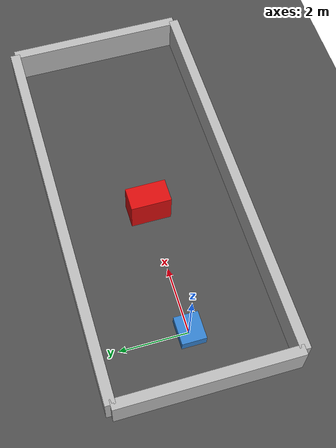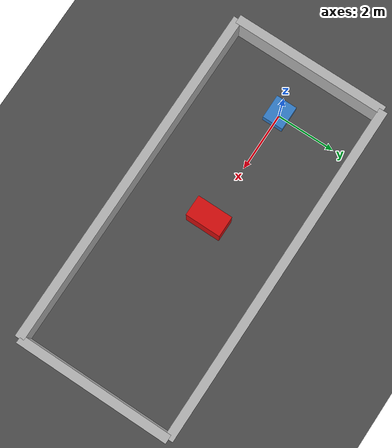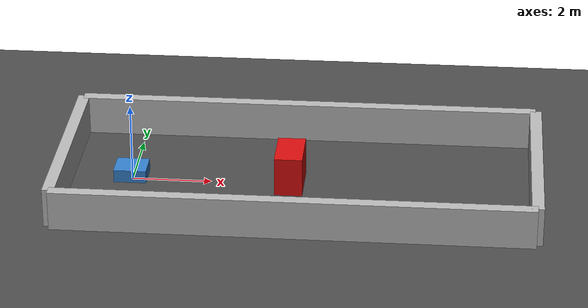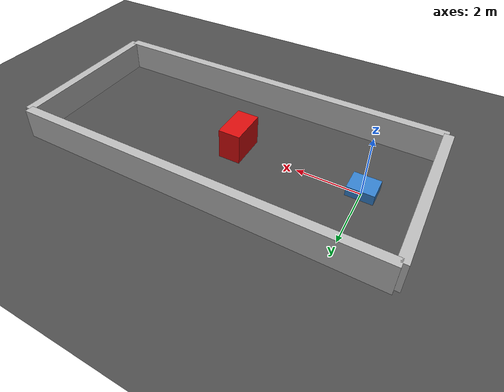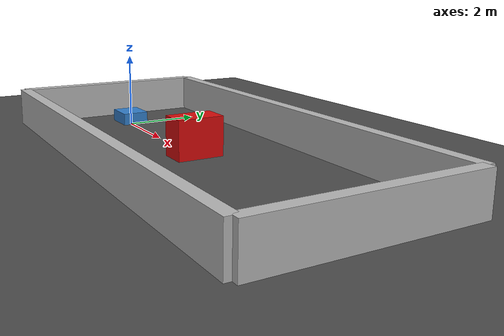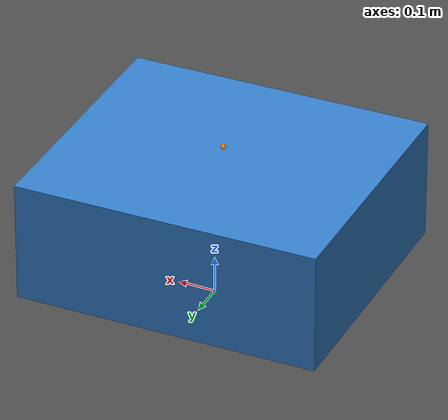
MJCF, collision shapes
<?xml version="1.0" encoding="utf-8"?>

<mujoco model="agv_nav2_test_unexpected_obstacle">

  <!--
    meshdir được tính tương đối từ models/agv_spawn.xml.
    Thư mục meshes nằm ngang hàng với models.
  -->
  <compiler
    angle="degree"
    meshdir="../meshes"
    autolimits="true"/>

  <option
    timestep="0.002"
    gravity="0 0 -9.81"
    integrator="implicitfast"/>

  <visual>
    <headlight
      ambient="0.4 0.4 0.4"
      diffuse="0.8 0.8 0.8"
      specular="0.1 0.1 0.1"/>
  </visual>

  <statistic
    center="0 0 0.2"
    extent="1.5"/>

  <default>

    <joint
      damping="0.1"
      armature="0.001"/>

    <!-- Visual mesh không tham gia collision -->
    <default class="visual">
      <geom
        type="mesh"
        contype="0"
        conaffinity="0"
        density="0"
        group="2"/>
    </default>

    <!-- Collision geometry dùng primitive đơn giản -->
    <default class="collision">
      <geom
        group="3"
        friction="1.0 0.005 0.0001"
        solref="0.005 1"
        solimp="0.9 0.95 0.001"/>
    </default>

  </default>

  <asset>

    <texture
      name="ground_texture"
      type="2d"
      builtin="checker"
      rgb1="0.25 0.25 0.25"
      rgb2="0.35 0.35 0.35"
      width="512"
      height="512"/>

    <material
      name="ground_material"
      texture="ground_texture"
      texrepeat="5 5"
      reflectance="0.05"/>

    <mesh
      name="base_link_mesh"
      file="Base_Link.stl"/>

    <mesh
      name="left_wheel_mesh"
      file="Left_Wheel.stl"/>

    <mesh
      name="right_wheel_mesh"
      file="Right_Wheel.stl"/>

    <mesh
      name="lidar_mesh"
      file="Lidar.stl"/>

    <mesh
      name="mam_xoay_mesh"
      file="Mam_xoay.stl"/>

  </asset>

  <worldbody>

    <light
      name="main_light"
      pos="0 0 4"
      dir="0 0 -1"
      directional="true"/>

    <geom
      name="floor"
      type="plane"
      group="0"
      size="80 30 0.1"
      material="ground_material"
      friction="1.0 0.005 0.0001"/>

    <!-- Compact Nav2 test arena: Unexpected obstacle. -->
    <include file="nav2_test_unexpected_obstacle_environment.xml"/>

    <!--
      Base_Link là thân vật lý chính.

      Giá trị z=0.15 chỉ là vị trí thả robot ban đầu.
      Robot sẽ rơi xuống sàn theo trọng lực.
    -->
    <body
      name="Base_Link"
      pos="0 0 0.15">

      <!-- Cho phép robot chuyển động tự do trong không gian -->
      <freejoint name="base_freejoint"/>

      <!--
        Khối lượng này tạm lấy từ URDF.
        Chưa dùng để kết luận Sim2Real.
      -->
      <inertial
        pos="-0.000061 -0.014856 0.039725"
        mass="10.228"
        diaginertia="0.51173 0.61846 1.0521"/>

      <!-- Mesh chỉ dùng hiển thị -->
      <geom
        name="base_visual"
        class="visual"
        mesh="base_link_mesh"
        rgba="0.75 0.75 0.75 1"/>

      <!--
        Collision dùng box thay vì STL nhiều tam giác.

        center của mesh:
        x = -0.0175
        y = -0.014007
        z = 0.090031

        size trong MuJoCo là half-size.
      -->
      <geom
        name="base_collision"
        class="collision"
        type="box"
        pos="-0.0175 -0.014007 0.090031"
        size="0.410 0.357 0.16297"
        mass="0"
        rgba="0.2 0.5 0.8 0.15"/>

      <site
        name="Base_footprint"
        type="sphere"
        pos="-0.0175 -0.014007 -0.0925"
        size="0.008"
        rgba="0 1 0 1"/>

            <!--
        IMU cố định với Base_Link, nằm tại tâm khu vực mâm xoay.

        imu_site là con trực tiếp của Base_Link, không nằm bên trong
        body Mam_xoay. Vì vậy IMU không quay theo mâm.
      -->
      <site
        name="imu_site"
        type="sphere"
        pos="-0.017238 -0.013326 0.27615"
        size="0.007"
        rgba="1 0.5 0 1"/>

      <body
        name="caster_front_left"
        pos="0.3175 0.152993 -0.0675">

        <joint
          name="caster_front_left_ball_joint"
          type="ball"
          damping="0.001"/>

        <geom
          name="caster_front_left_collision"
          class="collision"
          type="sphere"
          size="0.025"
          mass="0.03"
          friction="0.35 0.002 0.0001"
          rgba="0.1 0.8 0.2 0.25"/>

      </body>

      <body
        name="caster_front_right"
        pos="0.3175 -0.181007 -0.0675">

        <joint
          name="caster_front_right_ball_joint"
          type="ball"
          damping="0.001"/>

        <geom
          name="caster_front_right_collision"
          class="collision"
          type="sphere"
          size="0.025"
          mass="0.03"
          friction="0.35 0.002 0.0001"
          rgba="0.1 0.8 0.2 0.25"/>

      </body>

      <body
        name="caster_rear_left"
        pos="-0.3525 0.152993 -0.0675">

        <joint
          name="caster_rear_left_ball_joint"
          type="ball"
          damping="0.001"/>

        <geom
          name="caster_rear_left_collision"
          class="collision"
          type="sphere"
          size="0.025"
          mass="0.03"
          friction="0.35 0.002 0.0001"
          rgba="0.1 0.8 0.2 0.25"/>

      </body>

      <body
        name="caster_rear_right"
        pos="-0.3525 -0.181007 -0.0675">

        <joint
          name="caster_rear_right_ball_joint"
          type="ball"
          damping="0.001"/>

        <geom
          name="caster_rear_right_collision"
          class="collision"
          type="sphere"
          size="0.025"
          mass="0.03"
          friction="0.35 0.002 0.0001"
          rgba="0.1 0.8 0.2 0.25"/>

      </body>

      <!-- Bánh trái -->
      <body
        name="Left_Wheel"
        pos="-0.0055001 0.27899 0.0075">

        <joint
          name="Left_Wheel_jt"
          type="hinge"
          axis="0 1 0"
          limited="false"
          damping="0.2"/>

        <inertial
          pos="0 0.019997 0"
          mass="0.8908"
          diaginertia="0.0029235 0.0056311 0.0029235"/>

        <geom
          name="left_wheel_visual"
          class="visual"
          mesh="left_wheel_mesh"
          rgba="0.15 0.15 0.15 1"/>

        <!--
          Cylinder mặc định có trục theo Z.
          Quay 90 độ quanh X để trục cylinder nằm theo Y.
        -->
        <geom
          name="left_wheel_collision"
          class="collision"
          type="cylinder"
          size="0.1 0.02"
          euler="90 0 0"
          mass="0"
          friction="1.2 0.01 0.0001"
          rgba="1 0 0 0.2"/>

      </body>

      <!-- Bánh phải -->
      <body
        name="Right_Wheel"
        pos="-0.0055011 -0.30701 0.0075">

        <joint
          name="Right_Wheel_jt"
          type="hinge"
          axis="0 1 0"
          limited="false"
          damping="0.2"/>

        <inertial
          pos="0 -0.019997 0"
          mass="0.8908"
          diaginertia="0.0029235 0.0056311 0.0029235"/>

        <geom
          name="right_wheel_visual"
          class="visual"
          mesh="right_wheel_mesh"
          rgba="0.15 0.15 0.15 1"/>

        <geom
          name="right_wheel_collision"
          class="collision"
          type="cylinder"
          size="0.1 0.02"
          euler="90 0 0"
          mass="0"
          friction="1.2 0.01 0.0001"
          rgba="1 0 0 0.2"/>

      </body>

      <!-- LiDAR 2D: bridge ray-cast từ site lidar_origin. -->
      <body
        name="Lidar"
        pos="0.3305 -0.015607 0.094">

        <geom
          name="lidar_visual"
          class="visual"
          mesh="lidar_mesh"
          rgba="0.3 0.3 0.3 1"/>

        <!-- +X là góc 0 rad, +Y là chiều tăng góc theo REP-103. -->
        <site
          name="lidar_origin"
          type="sphere"
          pos="0 0 0.02"
          size="0.006"
          rgba="1 0 0 1"/>

      </body>

      <!-- Mâm xoay đang fixed giống URDF -->
      <body
        name="Mam_xoay"
        pos="-0.017238 -0.013326 0.27615">

        <geom
          name="mam_xoay_visual"
          class="visual"
          mesh="mam_xoay_mesh"
          rgba="0.79 0.82 0.93 1"/>

      </body>

    </body>

  </worldbody>

  <sensor>

      <!-- Vận tốc góc trong frame local của imu_site, rad/s -->
    <gyro
      name="imu_gyro"
      site="imu_site"/>

      <!-- Gia tốc tuyến tính tại vị trí imu_site, m/s^2 -->
    <accelerometer
      name="imu_accelerometer"
      site="imu_site"/>

      <!-- Quaternion orientation của imu_site trong world MuJoCo -->
    <framequat
      name="imu_orientation"
      objtype="site"
      objname="imu_site"/>

  </sensor>
  <!--
    Hai actuator này chưa nhận /cmd_vel.
    Khi spawn, ctrl mặc định bằng 0 nên bánh chưa quay.
  -->
  <actuator>

    <velocity
      name="left_wheel_motor"
      joint="Left_Wheel_jt"
      kv="20"
      ctrlrange="-8 8"
      forcerange="-3 3"/>

    <velocity
      name="right_wheel_motor"
      joint="Right_Wheel_jt"
      kv="20"
      ctrlrange="-8 8"
      forcerange="-3 3"/>

  </actuator>

</mujoco>

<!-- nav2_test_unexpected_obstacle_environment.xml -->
<!-- Generated Nav2 test arena: Unexpected obstacle. -->
<mujocoinclude>
  <geom name="unexpected_obstacle_rear_wall" group="0" pos="-1.65 0 0.5" size="0.15 2.65 0.5" type="box" rgba="0.72 0.72 0.72 1" friction="1.0 0.005 0.0001"/>
  <geom name="unexpected_obstacle_front_wall" group="0" pos="10.15 0 0.5" size="0.15 2.65 0.5" type="box" rgba="0.72 0.72 0.72 1" friction="1.0 0.005 0.0001"/>
  <geom name="unexpected_obstacle_left_wall" group="0" pos="4.25 2.65 0.5" size="5.9 0.15 0.5" type="box" rgba="0.72 0.72 0.72 1" friction="1.0 0.005 0.0001"/>
  <geom name="unexpected_obstacle_right_wall" group="0" pos="4.25 -2.65 0.5" size="5.9 0.15 0.5" type="box" rgba="0.72 0.72 0.72 1" friction="1.0 0.005 0.0001"/>
  <geom name="unexpected_obstacle_unexpected_red_box" group="0" pos="4 0 0.5" size="0.35 0.6 0.5" type="box" rgba="0.85 0.05 0.05 1" friction="1.0 0.005 0.0001"/>
</mujocoinclude>
